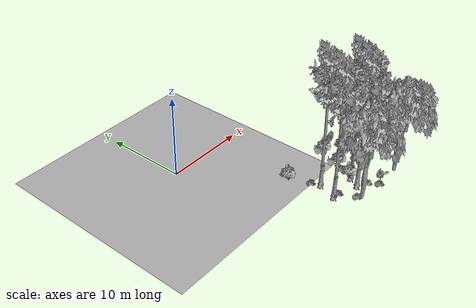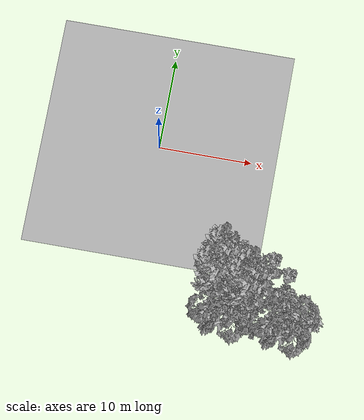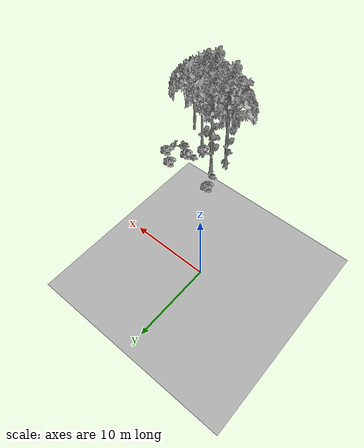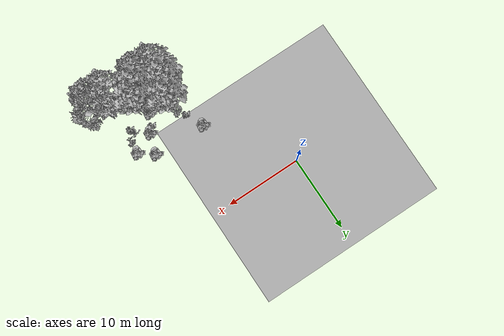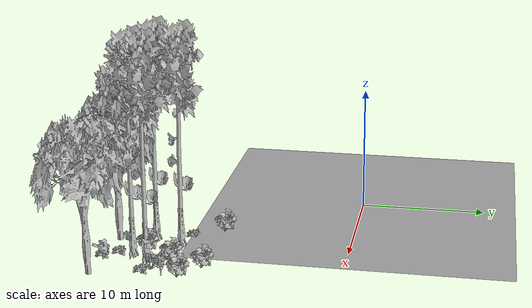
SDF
<sdf version="1.7">
 <world name="default">
  <model name="ground_plane">
   <static>1</static>
   <link name="link">
    <collision name="collision">
     <pose>-50 0 0 0 -0 0</pose>
     <geometry><plane><normal>0 0 1</normal><size>80 80</size></plane></geometry>
     <surface><contact><ode><min_depth>0.01</min_depth><max_vel>0</max_vel></ode></contact></surface>
    </collision>
    <visual name="grass">
     <cast_shadows>0</cast_shadows>
     <geometry>
      <mesh>
       <scale>0.46714285714285714 0.46714285714285714 0.1</scale>
       <uri>file://grass_plane/meshes/grass_plane.dae</uri>
      </mesh>
     </geometry>
    </visual>
   </link>
  </model>
  <model name="Tree 51">
   <static>1</static>
   <pose>9.193807514105771 -13.312954723415533 0 1.57079 -0 0</pose>
   <link name="link">
    <collision name="collision">
     <geometry><mesh><scale>3.5 5 3.5</scale><uri>model://tree_9/meshes/tree_9.obj</uri></mesh></geometry>
    </collision>
    <visual name="visual">
     <geometry><mesh><scale>3.5 5 3.5</scale><uri>model://tree_9/meshes/tree_9.obj</uri></mesh></geometry>
    </visual>
   </link>
  </model>
  <model name="Tree 108">
   <static>1</static>
   <pose>16.394349988380142 -18.39935595312614 0 1.57079 -0 0</pose>
   <link name="link">
    <collision name="collision">
     <geometry><mesh><scale>3.5 5 3.5</scale><uri>model://tree_2/meshes/tree_2.obj</uri></mesh></geometry>
    </collision>
    <visual name="visual">
     <geometry><mesh><scale>3.5 5 3.5</scale><uri>model://tree_2/meshes/tree_2.obj</uri></mesh></geometry>
    </visual>
   </link>
  </model>
  <model name="Tree 140">
   <static>1</static>
   <pose>11.631254173545024 -16.496100644521228 0 1.57079 -0 0</pose>
   <link name="link">
    <collision name="collision">
     <geometry><mesh><scale>3.5 5 3.5</scale><uri>model://tree_9/meshes/tree_9.obj</uri></mesh></geometry>
    </collision>
    <visual name="visual">
     <geometry><mesh><scale>3.5 5 3.5</scale><uri>model://tree_9/meshes/tree_9.obj</uri></mesh></geometry>
    </visual>
   </link>
  </model>
  <model name="Tree 334">
   <static>1</static>
   <pose>12.385400641025278 -15.220356059526896 0 1.57079 -0 0</pose>
   <link name="link">
    <collision name="collision">
     <geometry><mesh><scale>3.5 5 3.5</scale><uri>model://tree_9/meshes/tree_9.obj</uri></mesh></geometry>
    </collision>
    <visual name="visual">
     <geometry><mesh><scale>3.5 5 3.5</scale><uri>model://tree_9/meshes/tree_9.obj</uri></mesh></geometry>
    </visual>
   </link>
  </model>
  <model name="Tree 373">
   <static>1</static>
   <pose>10.065898282806991 -18.012067966056044 0 1.57079 -0 0</pose>
   <link name="link">
    <collision name="collision">
     <geometry><mesh><scale>3.5 5 3.5</scale><uri>model://tree_2/meshes/tree_2.obj</uri></mesh></geometry>
    </collision>
    <visual name="visual">
     <geometry><mesh><scale>3.5 5 3.5</scale><uri>model://tree_2/meshes/tree_2.obj</uri></mesh></geometry>
    </visual>
   </link>
  </model>
  <model name="Tree 517">
   <static>1</static>
   <pose>8.370091447323667 -15.560554321289306 0 1.57079 -0 0</pose>
   <link name="link">
    <collision name="collision">
     <geometry><mesh><scale>3.5 5 3.5</scale><uri>model://tree_9/meshes/tree_9.obj</uri></mesh></geometry>
    </collision>
    <visual name="visual">
     <geometry><mesh><scale>3.5 5 3.5</scale><uri>model://tree_9/meshes/tree_9.obj</uri></mesh></geometry>
    </visual>
   </link>
  </model>
  <model name="Bush 28">
   <static>1</static>
   <pose>13.881835272249361 -18.1192796105843 0 1.57079 -0 0</pose>
   <link name="link">
    <collision name="collision">
     <geometry><mesh><scale>2 2 2</scale><uri>model://bush_0/meshes/bush_0.obj</uri></mesh></geometry>
     <surface><contact><collide_without_contact>false</collide_without_contact></contact></surface>
    </collision>
    <visual name="visual">
     <geometry><mesh><scale>2 2 2</scale><uri>model://bush_0/meshes/bush_0.obj</uri></mesh></geometry>
    </visual>
   </link>
  </model>
  <model name="Bush 35">
   <static>1</static>
   <pose>8.279883594449984 -12.588663564454432 0 1.57079 -0 0</pose>
   <link name="link">
    <collision name="collision">
     <geometry><mesh><scale>2 2 2</scale><uri>model://bush_2/meshes/bush_2.obj</uri></mesh></geometry>
     <surface><contact><collide_without_contact>false</collide_without_contact></contact></surface>
    </collision>
    <visual name="visual">
     <geometry><mesh><scale>2 2 2</scale><uri>model://bush_2/meshes/bush_2.obj</uri></mesh></geometry>
    </visual>
   </link>
  </model>
  <model name="Bush 84">
   <static>1</static>
   <pose>13.014912051618133 -18.490000666932367 0 1.57079 -0 0</pose>
   <link name="link">
    <collision name="collision">
     <geometry><mesh><scale>2 2 2</scale><uri>model://bush_2/meshes/bush_2.obj</uri></mesh></geometry>
     <surface><contact><collide_without_contact>false</collide_without_contact></contact></surface>
    </collision>
    <visual name="visual">
     <geometry><mesh><scale>2 2 2</scale><uri>model://bush_2/meshes/bush_2.obj</uri></mesh></geometry>
    </visual>
   </link>
  </model>
  <model name="Bush 99">
   <static>1</static>
   <pose>14.964585335057755 -14.0942610064611 0 1.57079 -0 0</pose>
   <link name="link">
    <collision name="collision">
     <geometry><mesh><scale>2 2 2</scale><uri>model://bush_4/meshes/bush_4.obj</uri></mesh></geometry>
     <surface><contact><collide_without_contact>false</collide_without_contact></contact></surface>
    </collision>
    <visual name="visual">
     <geometry><mesh><scale>2 2 2</scale><uri>model://bush_4/meshes/bush_4.obj</uri></mesh></geometry>
    </visual>
   </link>
  </model>
  <model name="Bush 274">
   <static>1</static>
   <pose>15.998831174942673 -11.829213635195863 0 1.57079 -0 0</pose>
   <link name="link">
    <collision name="collision">
     <geometry><mesh><scale>2 2 2</scale><uri>model://bush_1/meshes/bush_1.obj</uri></mesh></geometry>
     <surface><contact><collide_without_contact>false</collide_without_contact></contact></surface>
    </collision>
    <visual name="visual">
     <geometry><mesh><scale>2 2 2</scale><uri>model://bush_1/meshes/bush_1.obj</uri></mesh></geometry>
    </visual>
   </link>
  </model>
  <model name="Bush 295">
   <static>1</static>
   <pose>12.636266306151342 -13.733556287844799 0 1.57079 -0 0</pose>
   <link name="link">
    <collision name="collision">
     <geometry><mesh><scale>2 2 2</scale><uri>model://bush_2/meshes/bush_2.obj</uri></mesh></geometry>
     <surface><contact><collide_without_contact>false</collide_without_contact></contact></surface>
    </collision>
    <visual name="visual">
     <geometry><mesh><scale>2 2 2</scale><uri>model://bush_2/meshes/bush_2.obj</uri></mesh></geometry>
    </visual>
   </link>
  </model>
  <model name="Bush 326">
   <static>1</static>
   <pose>13.408714749269969 -12.72003395791252 0 1.57079 -0 0</pose>
   <link name="link">
    <collision name="collision">
     <geometry><mesh><scale>2 2 2</scale><uri>model://bush_5/meshes/bush_5.obj</uri></mesh></geometry>
     <surface><contact><collide_without_contact>false</collide_without_contact></contact></surface>
    </collision>
    <visual name="visual">
     <geometry><mesh><scale>2 2 2</scale><uri>model://bush_5/meshes/bush_5.obj</uri></mesh></geometry>
    </visual>
   </link>
  </model>
  <model name="Bush 332">
   <static>1</static>
   <pose>15.905156154503615 -13.041234314986802 0 1.57079 -0 0</pose>
   <link name="link">
    <collision name="collision">
     <geometry><mesh><scale>2 2 2</scale><uri>model://bush_5/meshes/bush_5.obj</uri></mesh></geometry>
     <surface><contact><collide_without_contact>false</collide_without_contact></contact></surface>
    </collision>
    <visual name="visual">
     <geometry><mesh><scale>2 2 2</scale><uri>model://bush_5/meshes/bush_5.obj</uri></mesh></geometry>
    </visual>
   </link>
  </model>
  <model name="Bush 366">
   <static>1</static>
   <pose>14.16981304368884 -10.45211693142707 0 1.57079 -0 0</pose>
   <link name="link">
    <collision name="collision">
     <geometry><mesh><scale>2 2 2</scale><uri>model://bush_1/meshes/bush_1.obj</uri></mesh></geometry>
     <surface><contact><collide_without_contact>false</collide_without_contact></contact></surface>
    </collision>
    <visual name="visual">
     <geometry><mesh><scale>2 2 2</scale><uri>model://bush_1/meshes/bush_1.obj</uri></mesh></geometry>
    </visual>
   </link>
  </model>
  <model name="Bush 431">
   <static>1</static>
   <pose>13.3317290207682 -13.07140040229828 0 1.57079 -0 0</pose>
   <link name="link">
    <collision name="collision">
     <geometry><mesh><scale>2 2 2</scale><uri>model://bush_1/meshes/bush_1.obj</uri></mesh></geometry>
     <surface><contact><collide_without_contact>false</collide_without_contact></contact></surface>
    </collision>
    <visual name="visual">
     <geometry><mesh><scale>2 2 2</scale><uri>model://bush_1/meshes/bush_1.obj</uri></mesh></geometry>
    </visual>
   </link>
  </model>
  <model name="Bush 452">
   <static>1</static>
   <pose>8.671816811620921 -15.907562196975054 0 1.57079 -0 0</pose>
   <link name="link">
    <collision name="collision">
     <geometry><mesh><scale>2 2 2</scale><uri>model://bush_2/meshes/bush_2.obj</uri></mesh></geometry>
     <surface><contact><collide_without_contact>false</collide_without_contact></contact></surface>
    </collision>
    <visual name="visual">
     <geometry><mesh><scale>2 2 2</scale><uri>model://bush_2/meshes/bush_2.obj</uri></mesh></geometry>
    </visual>
   </link>
  </model>
  <model name="Bush 501">
   <static>1</static>
   <pose>9.53037313863824 -17.775558031444582 0 1.57079 -0 0</pose>
   <link name="link">
    <collision name="collision">
     <geometry><mesh><scale>2 2 2</scale><uri>model://bush_2/meshes/bush_2.obj</uri></mesh></geometry>
     <surface><contact><collide_without_contact>false</collide_without_contact></contact></surface>
    </collision>
    <visual name="visual">
     <geometry><mesh><scale>2 2 2</scale><uri>model://bush_2/meshes/bush_2.obj</uri></mesh></geometry>
    </visual>
   </link>
  </model>
  <model name="Bush 511">
   <static>1</static>
   <pose>12.272245347747976 -17.4111381523735 0 1.57079 -0 0</pose>
   <link name="link">
    <collision name="collision">
     <geometry><mesh><scale>2 2 2</scale><uri>model://bush_2/meshes/bush_2.obj</uri></mesh></geometry>
     <surface><contact><collide_without_contact>false</collide_without_contact></contact></surface>
    </collision>
    <visual name="visual">
     <geometry><mesh><scale>2 2 2</scale><uri>model://bush_2/meshes/bush_2.obj</uri></mesh></geometry>
    </visual>
   </link>
  </model>
  <model name="Bush 533">
   <static>1</static>
   <pose>7.293312991612908 -10.278924389809 0 1.57079 -0 0</pose>
   <link name="link">
    <collision name="collision">
     <geometry><mesh><scale>2 2 2</scale><uri>model://bush_1/meshes/bush_1.obj</uri></mesh></geometry>
     <surface><contact><collide_without_contact>false</collide_without_contact></contact></surface>
    </collision>
    <visual name="visual">
     <geometry><mesh><scale>2 2 2</scale><uri>model://bush_1/meshes/bush_1.obj</uri></mesh></geometry>
    </visual>
   </link>
  </model>
  <model name="Bush 602">
   <static>1</static>
   <pose>15.16623600870291 -14.824839744301379 0 1.57079 -0 0</pose>
   <link name="link">
    <collision name="collision">
     <geometry><mesh><scale>2 2 2</scale><uri>model://bush_2/meshes/bush_2.obj</uri></mesh></geometry>
     <surface><contact><collide_without_contact>false</collide_without_contact></contact></surface>
    </collision>
    <visual name="visual">
     <geometry><mesh><scale>2 2 2</scale><uri>model://bush_2/meshes/bush_2.obj</uri></mesh></geometry>
    </visual>
   </link>
  </model>
  <model name="Bush 636">
   <static>1</static>
   <pose>12.014225321604478 -15.279836067787194 0 1.57079 -0 0</pose>
   <link name="link">
    <collision name="collision">
     <geometry><mesh><scale>2 2 2</scale><uri>model://bush_1/meshes/bush_1.obj</uri></mesh></geometry>
     <surface><contact><collide_without_contact>false</collide_without_contact></contact></surface>
    </collision>
    <visual name="visual">
     <geometry><mesh><scale>2 2 2</scale><uri>model://bush_1/meshes/bush_1.obj</uri></mesh></geometry>
    </visual>
   </link>
  </model>
 </world>
</sdf>
